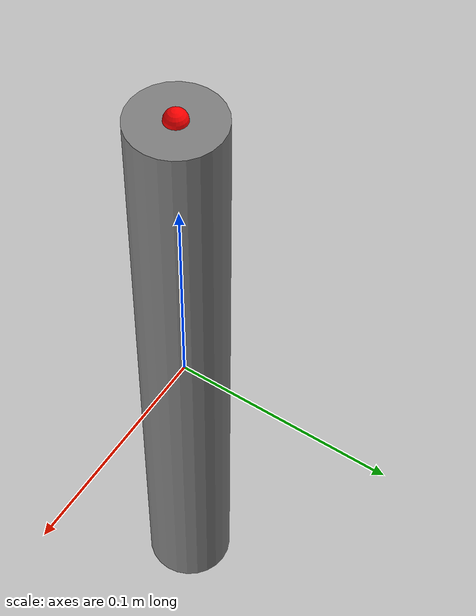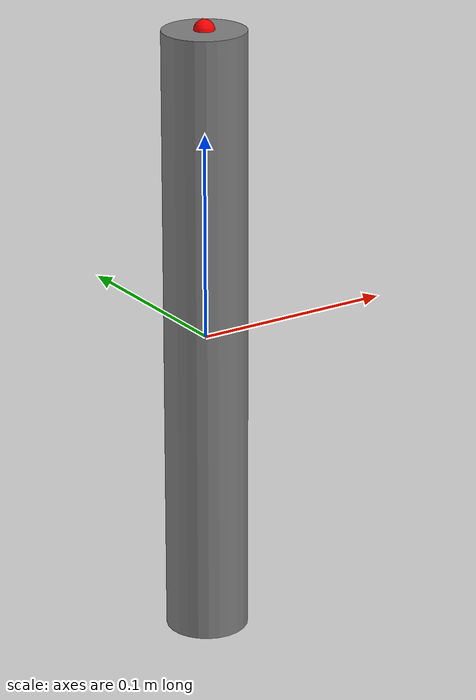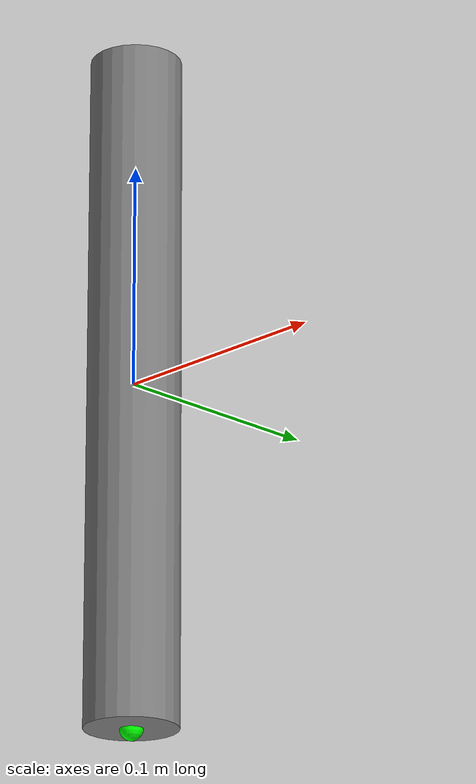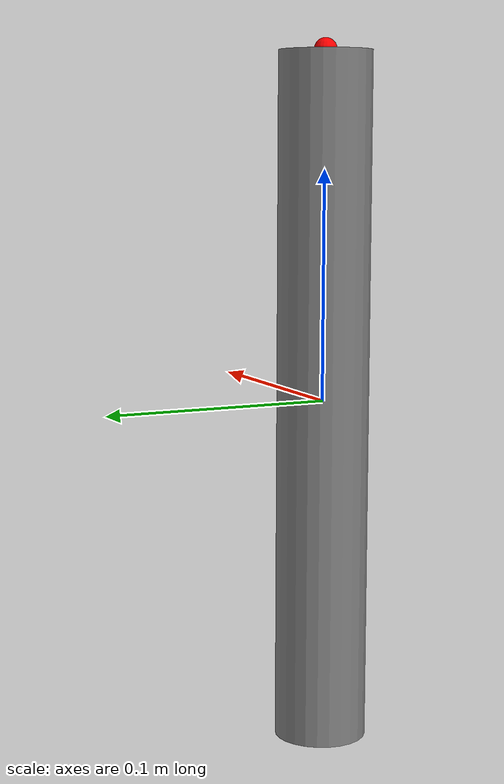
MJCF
<mujoco model="laboratory_tube">
    <asset>
        <material name="mat_glass_tube" rgba="0.9 0.9 1.0 0.4" shininess="1" reflectance="0.5"/>
    </asset>

    <worldbody>
        <body name="vial_body">
            <joint type="free" name="vial_freejoint" limited="false"/>

            <geom name="vial_collision" type="cylinder" size="0.02 0.15" group="0" density="1000" friction="1 0.005 0.0001" condim="3"/>

            <geom name="vial_visual" type="cylinder" size="0.02 0.15" group="1" material="mat_glass_tube" conaffinity="0" contype="0"/>

            <site name="grasp_point" pos="0 0 0.15" size="0.005" rgba="1 0 0 1" group="1"/>

            <site name="bottom_point" pos="0 0 -0.15" size="0.005" rgba="0 1 0 1" group="1"/>
        </body>
    </worldbody>
</mujoco>
